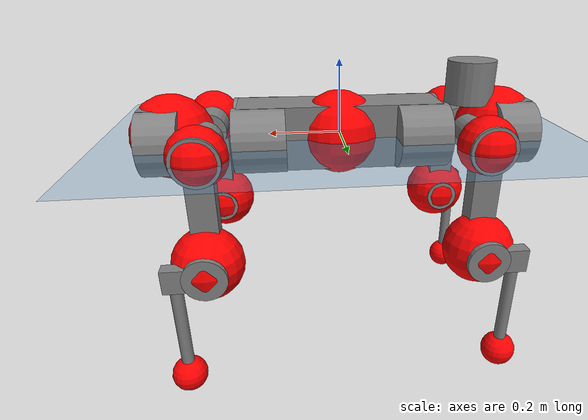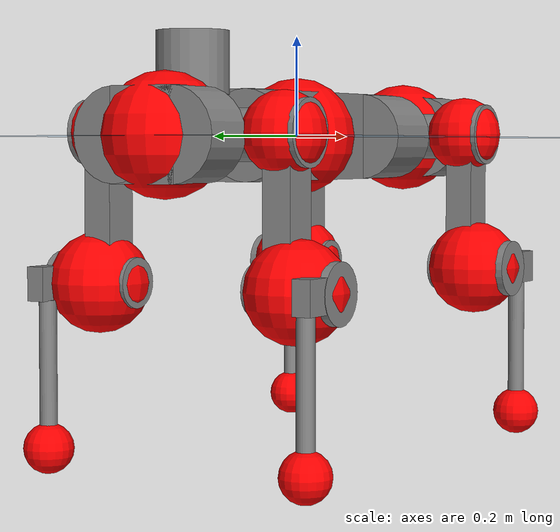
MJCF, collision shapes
<mujoco model="anymal_c">
  <compiler angle="radian" assetdir="assets" balanceinertia="true" inertiafromgeom="false"/>

  <option timestep="0.005" density="1.2" viscosity="2e-05"/>

  <size nkey="1"/>

  <visual>
    <quality shadowsize="8192"/>
    <map shadowclip="0.5"/>
  </visual>

  <default>
    <default class="/">
      <material specular="0" shininess="0.25"/>
      <geom contype="0" conaffinity="0" group="1" solref="-1000 -80"/>
      <site size="0.01 0.005 0.005" group="5"/>
      <general forcelimited="true" forcerange="-80 80" biastype="affine" gainprm="80" biasprm="0 -80 -2"/>
      <default class="anymal_c">
        <joint armature="0.01" damping="0.01" frictionloss="0.1"/>
        <default class="visual">
          <geom type="mesh" group="2"/>
          <default class="visual_zflip"/>
        </default>
        <default class="collision">
          <geom type="cylinder" group="3"/>
          <default class="foot">
            <geom size="0.03 0 0" type="sphere" condim="6" priority="1" friction="0.8 0.02 0.01" solimp="0.015 1 0.03"/>
          </default>
        </default>
      </default>
      <default class="reward_collision_sphere">
        <geom group="5" rgba="1 0 0 1"/>
      </default>
    </default>
  </default>

  <asset>
    <texture type="skybox" colorspace="auto" name="//unnamed_texture_0" builtin="gradient" rgb1="0.95 0.95 0.95" rgb2="0.95 0.95 0.95" width="100" height="600"/>
    <texture type="2d" colorspace="auto" name="texplane" builtin="checker" rgb1="0.345 0.575 0.748" rgb2="0.345 0.575 0.748" markrgb="1 1 1" width="512" height="512"/>
    <texture type="2d" colorspace="linear" name="base" file="base.png"/>
    <texture type="2d" colorspace="linear" name="top_shell" file="top_shell.png"/>
    <texture type="2d" colorspace="linear" name="bottom_shell" file="bottom_shell.png"/>
    <texture type="2d" colorspace="linear" name="remote" file="remote.png"/>
    <texture type="2d" colorspace="linear" name="hatch" file="hatch.png"/>
    <texture type="2d" colorspace="linear" name="handle" file="handle.png"/>
    <texture type="2d" colorspace="linear" name="face" file="face.png"/>
    <texture type="2d" colorspace="linear" name="battery" file="battery.png"/>
    <texture type="2d" colorspace="linear" name="lidar_cage" file="lidar_cage.png"/>
    <texture type="2d" colorspace="linear" name="depth_camera" file="depth_camera.png"/>
    <texture type="2d" colorspace="linear" name="wide_angle_camera" file="wide_angle_camera.png"/>
    <texture type="2d" colorspace="linear" name="lidar" file="lidar.png"/>
    <texture type="2d" colorspace="linear" name="drive" file="drive.png"/>
    <texture type="2d" colorspace="linear" name="hip_l" file="hip_l.png"/>
    <texture type="2d" colorspace="linear" name="shank_l" file="shank_l.png"/>
    <texture type="2d" colorspace="linear" name="foot" file="foot.png"/>
    <texture type="2d" colorspace="linear" name="thigh" file="thigh.png"/>
    <texture type="2d" colorspace="linear" name="shank_r" file="shank_r.png"/>
    <texture type="2d" colorspace="linear" name="hip_r" file="hip_r.png"/>
    <material name="MatPlane" class="/" texture="texplane" texuniform="true" texrepeat="2 2" specular="0.9" shininess="0.5"/>
    <material name="black_plastic" class="/" rgba="0.007 0.007 0.007 1"/>
    <material name="green" class="/" rgba="0.052 0.178 0.033 1"/>
    <material name="red" class="/" rgba="0.178 0.006 0.005 1"/>
    <material name="yellow" class="/" rgba="0.178 0.119 0.006 1"/>
    <material name="lwl" class="/" rgba="0.8 0.8 0.8 1"/>
    <material name="base" class="/" texture="base"/>
    <material name="top_shell" class="/" texture="top_shell"/>
    <material name="bottom_shell" class="/" texture="bottom_shell"/>
    <material name="hip_l" class="/" texture="hip_l"/>
    <material name="thigh" class="/" texture="thigh"/>
    <material name="shank_l" class="/" texture="shank_l"/>
    <material name="foot" class="/" texture="foot"/>
    <material name="hip_r" class="/" texture="hip_r"/>
    <material name="shank" class="/" texture="shank_r"/>
    <material name="hatch" class="/" texture="hatch"/>
    <material name="remote" class="/" texture="remote"/>
    <material name="handle" class="/" texture="handle"/>
    <material name="face" class="/" texture="face"/>
    <material name="depth_camera" class="/" texture="depth_camera"/>
    <material name="wide_angle_camera" class="/" texture="wide_angle_camera"/>
    <material name="battery" class="/" texture="battery"/>
    <material name="lidar_cage" class="/" texture="lidar_cage"/>
    <material name="lidar" class="/" texture="lidar"/>
    <material name="drive" class="/" texture="drive"/>
    <mesh name="base_0" class="/" file="base_0.obj"/>
    <mesh name="base_1" class="/" file="base_1.obj"/>
    <mesh name="base_2" class="/" file="base_2.obj"/>
    <mesh name="base_3" class="/" file="base_3.obj"/>
    <mesh name="base_4" class="/" file="base_4.obj"/>
    <mesh name="base_5" class="/" file="base_5.obj"/>
    <mesh name="top_shell" class="/" file="top_shell.obj"/>
    <mesh name="bottom_shell" class="/" file="bottom_shell.obj"/>
    <mesh name="remote" class="/" file="remote.obj"/>
    <mesh name="handle" class="/" file="handle.obj"/>
    <mesh name="face" class="/" file="face.obj"/>
    <mesh name="wide_angle_camera" class="/" file="wide_angle_camera.obj"/>
    <mesh name="depth_camera" class="/" file="depth_camera.obj"/>
    <mesh name="battery" class="/" file="battery.obj"/>
    <mesh name="lidar_cage" class="/" file="lidar_cage.obj"/>
    <mesh name="lidar" class="/" file="lidar.obj"/>
    <mesh name="drive" class="/" file="drive.obj"/>
    <mesh name="hip_l" class="/" file="hip_l.obj"/>
    <mesh name="thigh" class="/" file="thigh.obj"/>
    <mesh name="shank_l" class="/" file="shank_l.obj"/>
    <mesh name="foot" class="/" file="foot.obj"/>
    <mesh name="hip_r" class="/" file="hip_r.obj"/>
    <mesh name="hatch" class="/" file="hatch.obj"/>
    <mesh name="shank_r" class="/" file="shank_r.obj"/>
  </asset>

  <worldbody>
    <geom name="floor" class="/" size="100 100 0.125" type="plane" group="0" material="MatPlane"/>
    <light name="toplight_shadow" class="/" pos="0 0 5" dir="0.0990148 0.0990148 -0.990148" type="directional" ambient="0.04 0.04 0.04" diffuse="0.55 0.55 0.55" specular="0.12 0.12 0.12"/>
    <light name="toplight_fill" class="/" pos="0 0 5" dir="0.0990148 0.0990148 -0.990148" type="directional" castshadow="false" ambient="0.04 0.04 0.04" diffuse="0.3 0.3 0.3" specular="0.08 0.08 0.08"/>
    <body name="trunk" childclass="anymal_c" pos="0.000736498 -0.00074194 7.9869e-05" quat="1 -6.69548e-05 -2.93298e-05 6.43903e-05">
      <inertial pos="0.00243274 -0.000663198 0.0491073" quat="0.500173 0.497127 0.498888 0.503788" mass="17.3001" diaginertia="0.741602 0.347606 0.215563"/>
      <joint name="//unnamed_joint_0" type="free" armature="0" damping="0" frictionloss="0"/>
      <geom name="//unnamed_geom_1" class="visual" material="green" mesh="base_0"/>
      <geom name="//unnamed_geom_2" class="visual" material="yellow" mesh="base_1"/>
      <geom name="//unnamed_geom_3" class="visual" material="red" mesh="base_2"/>
      <geom name="//unnamed_geom_4" class="visual" material="black_plastic" mesh="base_3"/>
      <geom name="//unnamed_geom_5" class="visual" material="lwl" mesh="base_4"/>
      <geom name="//unnamed_geom_6" class="visual" material="base" mesh="base_5"/>
      <geom name="trunk_1" class="collision" size="0.28207 0.0680858 0.0875388" type="box"/>
      <geom name="trunk_2" class="collision" size="0.0875388 0.0705174" pos="0.223642 0.0623862 0" quat="0.707107 0 0.707107 0"/>
      <geom name="trunk_3" class="collision" size="0.0875388 0.0705174" pos="-0.223642 0.0623862 0" quat="0.707107 0 0.707107 0"/>
      <geom name="trunk_4" class="collision" size="0.0875388 0.0705174" pos="0.223642 -0.0623862 0" quat="0.707107 0 0.707107 0"/>
      <geom name="trunk_5" class="collision" size="0.0875388 0.0705174" pos="-0.223642 -0.0623862 0" quat="0.707107 0 0.707107 0"/>
      <geom name="//unnamed_geom_12" class="visual" material="top_shell" mesh="top_shell"/>
      <geom name="//unnamed_geom_13" class="visual" material="bottom_shell" mesh="bottom_shell"/>
      <geom name="//unnamed_geom_14" class="visual" material="remote" mesh="remote"/>
      <geom name="//unnamed_geom_15" class="visual" material="handle" mesh="handle"/>
      <geom name="//unnamed_geom_16" class="visual" pos="0.426206 0 0" quat="1 0 0 0" material="face" mesh="face"/>
      <geom name="trunk_6" class="collision" size="0.053496 0.0680858 0.0875388" pos="0.482759 0 0" type="box"/>
      <geom name="//unnamed_geom_18" class="collision" size="0.0875388 0.053496" pos="0.482759 0.0623862 0" quat="0.707107 0 0.707107 0"/>
      <geom name="//unnamed_geom_19" class="collision" size="0.0875388 0.053496" pos="0.482759 -0.0623862 0" quat="0.707107 0 0.707107 0"/>
      <geom name="//unnamed_geom_20" class="visual" pos="0.474686 0 -0.0289298" quat="0.965926 0 0.258819 0" material="depth_camera" mesh="depth_camera"/>
      <geom name="//unnamed_geom_21" class="visual" pos="0.527487 0 0.0149474" material="wide_angle_camera" mesh="wide_angle_camera"/>
      <geom name="//unnamed_geom_22" class="visual_zflip" pos="-0.426206 0 0" quat="0 0 0 1" material="face" mesh="face"/>
      <geom name="trunk_7" class="collision" size="0.053496 0.0680858 0.0875388" pos="-0.482759 0 0" quat="0 0 0 1" type="box"/>
      <geom name="//unnamed_geom_24" class="collision" size="0.0875388 0.053496" pos="-0.482759 -0.0623862 0" quat="0 -0.707107 0 0.707107"/>
      <geom name="//unnamed_geom_25" class="collision" size="0.0875388 0.053496" pos="-0.482759 0.0623862 0" quat="0 -0.707107 0 0.707107"/>
      <geom name="//unnamed_geom_26" class="visual" pos="-0.474686 0 -0.0289298" quat="0 -0.258819 0 0.965926" material="depth_camera" mesh="depth_camera"/>
      <geom name="//unnamed_geom_27" class="visual_zflip" pos="-0.527487 0 0.0149474" quat="0 0 0 1" material="wide_angle_camera" mesh="wide_angle_camera"/>
      <geom name="//unnamed_geom_28" class="visual" material="battery" mesh="battery"/>
      <geom name="//unnamed_geom_29" class="visual" pos="0 0.0663444 0.0292322" quat="0.683013 -0.183013 0.183013 0.683013" material="depth_camera" mesh="depth_camera"/>
      <geom name="//unnamed_geom_30" class="visual" pos="0 -0.0663444 0.0292322" quat="0.683013 0.183013 0.183013 -0.683013" material="depth_camera" mesh="depth_camera"/>
      <geom name="//unnamed_geom_31" class="visual" pos="-0.37428 0 0.073389" quat="1 0 0 0" material="lidar_cage" mesh="lidar_cage"/>
      <geom name="trunk_8" class="collision" size="0.0680858 0.0583592" pos="-0.37428 0 0.133298"/>
      <geom name="//unnamed_geom_33" class="visual" pos="-0.37428 -5.38274e-05 0.141985" quat="0.707107 0 0 -0.707107" material="lidar" mesh="lidar"/>
      <geom name="//unnamed_geom_34" class="visual" pos="0.308369 0.0927261 -1.85023e-09" quat="0.258819 0.965926 0 0" material="drive" mesh="drive"/>
      <geom name="//unnamed_geom_35" class="visual" pos="0.308369 -0.0927261 1.85023e-09" quat="0.258819 -0.965926 0 0" material="drive" mesh="drive"/>
      <geom name="//unnamed_geom_36" class="visual" pos="-0.308369 0.0927261 1.85023e-09" quat="0 0 0.965926 -0.258819" material="drive" mesh="drive"/>
      <geom name="//unnamed_geom_37" class="visual" pos="-0.308369 -0.0927261 -1.85023e-09" quat="0 0 -0.965926 -0.258819" material="drive" mesh="drive"/>
      <geom name="//unnamed_geom_38" class="visual" pos="0.119276 0 0.0728898" quat="1 0 0 0" material="hatch" mesh="hatch"/>
      <geom name="//unnamed_geom_39" class="reward_collision_sphere" size="0.116718"/>
      <geom name="//unnamed_geom_40" class="reward_collision_sphere" size="0.116718" pos="0.462708 0 0"/>
      <geom name="//unnamed_geom_41" class="reward_collision_sphere" size="0.116718" pos="-0.462708 0 0"/>
      <site name="imu" pos="0.255671 0.00502316 0.0394829" size="0.00972654"/>
      <camera name="track" pos="0 -1.78246 0" quat="0.707107 0.707107 0 0" mode="trackcom"/>
      <camera name="ego_camera" pos="0.462708 0 -0.0399396" quat="-0.5 -0.5 0.5 0.5"/>
      <body name="LF_HIP" pos="0.309441 0.0930145 0.00148707" quat="0.258976 0.965884 -3.29493e-05 -0.000114315">
        <inertial pos="0.0572275 -0.012626 -0.00833496" quat="-0.128203 0.710199 -0.135551 0.678828" mass="2.55797" diaginertia="0.0067257 0.00278969 0.00326254"/>
        <joint name="LF_HAA" pos="0 0 0" axis="0.999933 -0.000632195 -0.0115584" range="-0.719839 0.488145" armature="0.0090946" damping="0.0126499" frictionloss="0.0925163"/>
        <geom name="//unnamed_geom_42" class="visual" pos="0 -0.000108841 1.7877e-05" quat="0.258819 -0.965926 0 0" material="hip_l" mesh="hip_l"/>
        <geom name="//unnamed_geom_43" class="visual" pos="0.0615916 -0.0728655 -0.0428623" quat="0.183013 -0.683013 0.683013 0.183013" material="drive" mesh="drive"/>
        <geom name="//unnamed_geom_44" class="collision" size="0.0486327 0.0680858" pos="0.0615916 -0.0106589 -0.00689457" quat="-0.353553 -0.612372 0.612372 -0.353553"/>
        <body name="LF_THIGH" pos="0.062871 -0.0657874 -0.041603" quat="0.182808 -0.683072 0.682909 0.183385">
          <inertial pos="0.0321707 0.000149985 -0.246777" quat="0.993541 -0.00173352 -0.0777389 0.082641" mass="2.83231" diaginertia="0.0348711 0.0169229 0.00419194"/>
          <joint name="LF_HFE" pos="0 0 0" axis="0.999986 0.00179715 0.00500059" range="-3.15759 3.13799" armature="0.00986485" damping="0.0140193" frictionloss="0.10172"/>
          <geom name="//unnamed_geom_45" class="visual" pos="0.00272595 4.29547e-06 0" quat="0.707107 0 0 -0.707107" material="thigh" mesh="thigh"/>
          <geom name="//unnamed_geom_46" class="collision" size="0.0632225 0.0389062" pos="0.0411296 0 0" quat="0.5 0.5 -0.5 -0.5"/>
          <geom name="//unnamed_geom_47" class="collision" size="0.0364745 0.0291796 0.13745" pos="0.0308472 0 -0.141101" quat="0.707107 0 0 -0.707107" type="box"/>
          <geom name="//unnamed_geom_48" class="visual" pos="0.103133 0 -0.28457" quat="1 0 0 0" material="drive" mesh="drive"/>
          <geom name="//unnamed_geom_49" class="collision" size="0.0486327 0.0680858" pos="0.0311557 0 -0.28457" quat="0.707107 0 0.707107 0"/>
          <geom name="//unnamed_geom_50" class="reward_collision_sphere" size="0.0778123" pos="0.025706 0 0"/>
          <body name="LF_SHANK" pos="0.103399 -0.00201384 -0.285183" quat="1 0.000140675 -1.63853e-05 -0.000200346">
            <inertial pos="0.00462712 -0.0548759 -0.080441" quat="0.993538 -0.111184 -5.39005e-05 -0.0228295" mass="0.5302" diaginertia="0.0115835 0.00514807 0.00109429"/>
            <joint name="LF_KFE" pos="0 0 0" axis="0.999999 -0.000367255 0.00168691" range="-3.13618 3.1287" armature="0.00985051" damping="0.00837507" frictionloss="0.0981189"/>
            <geom name="//unnamed_geom_51" class="visual" pos="0.000888874 0.00473952 0" quat="0.707107 0 0 -0.707107" material="shank_l" mesh="shank_l"/>
            <geom name="LF_kfe_act" class="collision" size="0.0583592 0.0194531" pos="0.0205648 0 0" quat="0.5 0.5 -0.5 -0.5"/>
            <geom name="//unnamed_geom_53" class="collision" size="0.0559266 0.0328271 0.0184804" pos="0.0205648 -0.0512449 0" quat="0.5 0.5 -0.5 -0.5" type="box"/>
            <geom name="//unnamed_geom_54" class="visual" pos="0.0134183 -0.0768564 -0.33746" quat="0.382683 0 0 -0.92388" material="foot" mesh="foot"/>
            <geom name="LF_calf" class="collision" size="0.0170214 0.137389" pos="0.0134185 -0.0783838 -0.16873" quat="0.707107 0 0 -0.707107"/>
            <geom name="LF_foot" class="foot" size="0.0295307" pos="0.0134185 -0.0783838 -0.314994" quat="0.707107 0 0 -0.707107"/>
            <geom name="//unnamed_geom_57" class="reward_collision_sphere" size="0.0972654" pos="-0.051412 0 0"/>
            <geom name="//unnamed_geom_58" class="reward_collision_sphere" size="0.0486327" pos="0.0134185 -0.0783838 -0.314994"/>
            <site name="LF_foot" class="foot" pos="0.0134185 -0.0783838 -0.314994" quat="0.707107 0 0 -0.707107" size="0.00972654"/>
          </body>
        </body>
      </body>
      <body name="RF_HIP" pos="0.307512 -0.0917261 0.000279766" quat="0.258552 -0.965997 0.000198567 3.18846e-05">
        <inertial pos="0.0598463 0.0136592 -0.0093615" quat="0.135371 0.676187 0.127569 0.712862" mass="2.61448" diaginertia="0.00685696 0.0028321 0.00331894"/>
        <joint name="RF_HAA" pos="0 0 0" axis="0.999985 -0.00529123 0.00130737" range="-0.515107 0.730867" armature="0.00977304" damping="0.0127026" frictionloss="0.0957005"/>
        <geom name="//unnamed_geom_59" class="visual" pos="0 0.00010884 1.78769e-05" quat="0.258819 0.965926 0 0" material="hip_r" mesh="hip_r"/>
        <geom name="//unnamed_geom_60" class="visual" pos="0.0615916 0.0728655 -0.0428623" quat="0.183013 0.683013 0.683013 -0.183013" material="drive" mesh="drive"/>
        <geom name="//unnamed_geom_61" class="collision" size="0.0486327 0.0680858" pos="0.0615916 0.0106589 -0.00689457" quat="-0.353553 0.612372 0.612372 0.353553"/>
        <body name="RF_THIGH" pos="0.0618132 0.0654508 -0.0429534" quat="0.183041 0.682961 0.683102 -0.182843">
          <inertial pos="0.0327574 0.00170576 -0.245019" quat="0.992805 -0.00523092 -0.080555 0.0884443" mass="2.80942" diaginertia="0.0345008 0.0168298 0.00413032"/>
          <joint name="RF_HFE" pos="0 0 0" axis="0.999989 0.00389301 -0.00274923" stiffness="0.00546233" range="-3.15111 3.11942" armature="0.00978258" damping="0.00678643" frictionloss="0.0995733"/>
          <geom name="//unnamed_geom_62" class="visual" pos="0.00272595 4.29547e-06 0" quat="0.707107 0 0 -0.707107" material="thigh" mesh="thigh"/>
          <geom name="//unnamed_geom_63" class="collision" size="0.0632225 0.0389062" pos="0.0411296 0 0" quat="0.5 0.5 0.5 0.5"/>
          <geom name="//unnamed_geom_64" class="collision" size="0.0364745 0.0291796 0.13745" pos="0.0308472 0 -0.141101" quat="0.707107 0 0 0.707107" type="box"/>
          <geom name="//unnamed_geom_65" class="visual" pos="0.103133 0 -0.28457" quat="1 0 0 0" material="drive" mesh="drive"/>
          <geom name="//unnamed_geom_66" class="collision" size="0.0486327 0.0680858" pos="0.0311557 0 -0.28457" quat="0.707107 0 0.707107 0"/>
          <geom name="//unnamed_geom_67" class="reward_collision_sphere" size="0.0778123" pos="0.025706 0 0"/>
          <body name="RF_SHANK" pos="0.102335 -0.000261262 -0.284092" quat="1 -0.000431707 -0.000575911 0.000304582">
            <inertial pos="0.00770365 0.0553076 -0.0799455" quat="0.993002 0.115848 -0.000845657 0.0229214" mass="0.535637" diaginertia="0.0114645 0.00519172 0.00112406"/>
            <joint name="RF_KFE" pos="0 0 0" axis="0.999998 0.00077632 -0.00176596" range="-3.1553 3.13921" armature="0.00998556" damping="0.0129257" frictionloss="0.100351"/>
            <geom name="//unnamed_geom_68" class="visual" pos="0.000888869 -0.00473951 0" quat="0.707107 0 0 0.707107" material="shank" mesh="shank_r"/>
            <geom name="RF_kfe_act" class="collision" size="0.0583592 0.0194531" pos="0.0205648 0 0" quat="0.5 0.5 0.5 0.5"/>
            <geom name="//unnamed_geom_70" class="collision" size="0.0559266 0.0328271 0.0184804" pos="0.0205648 0.0512449 0" quat="0.5 0.5 0.5 0.5" type="box"/>
            <geom name="//unnamed_geom_71" class="visual" pos="0.0134188 0.0768564 -0.33746" quat="0.382683 0 0 0.92388" material="foot" mesh="foot"/>
            <geom name="RF_calf" class="collision" size="0.0170214 0.137389" pos="0.0134185 0.0783838 -0.16873" quat="0.707107 0 0 0.707107"/>
            <geom name="RF_foot" class="foot" size="0.0292935" pos="0.0134185 0.0783838 -0.314994" quat="0.707107 0 0 0.707107"/>
            <geom name="//unnamed_geom_74" class="reward_collision_sphere" size="0.0972654" pos="-0.051412 0 0"/>
            <geom name="//unnamed_geom_75" class="reward_collision_sphere" size="0.0486327" pos="0.0134185 0.0783838 -0.314994"/>
            <site name="RF_foot" class="foot" pos="0.0134185 0.0783838 -0.314994" quat="0.707107 0 0 0.707107" size="0.00972654"/>
          </body>
        </body>
      </body>
      <body name="LH_HIP" pos="-0.305845 0.0926254 0.000657567" quat="2.04353e-06 4.20014e-06 0.965927 -0.258817">
        <inertial pos="0.0596279 0.0116101 -0.00825361" quat="0.137332 0.679353 0.129499 0.709119" mass="2.58493" diaginertia="0.00672015 0.00275917 0.00324116"/>
        <joint name="LH_HAA" pos="0 0 0" axis="0.999994 0.000464376 -0.00351039" range="-0.505317 0.70645" armature="0.00967645" damping="0.00943708" frictionloss="0.0997951"/>
        <geom name="//unnamed_geom_76" class="visual" pos="0 0.00010884 1.78769e-05" quat="-0.258819 -0.965926 0 0" material="hip_r" mesh="hip_r"/>
        <geom name="//unnamed_geom_77" class="visual" pos="0.0615916 0.0728655 -0.0428623" quat="0.183013 0.683013 0.683013 -0.183013" material="drive" mesh="drive"/>
        <geom name="//unnamed_geom_78" class="collision" size="0.0486327 0.0680858" pos="0.0615916 0.0106589 -0.00689457" quat="-0.353553 0.612372 0.612372 0.353553"/>
        <body name="LH_THIGH" pos="0.0601328 0.0639482 -0.0428495" quat="0.183179 0.682953 0.682973 -0.183217">
          <inertial pos="0.0321475 0.00119939 -0.245294" quat="0.992813 -0.00532374 -0.0805843 0.0883155" mass="2.82532" diaginertia="0.0348524 0.0166863 0.00404812"/>
          <joint name="LH_HFE" pos="0 0 0" axis="0.999997 0.0018495 -0.00138364" range="-3.15257 3.12489" armature="0.0102322" damping="0.00621274" frictionloss="0.0990515"/>
          <geom name="//unnamed_geom_79" class="visual" pos="0.00272595 4.29547e-06 0" quat="0.707107 0 0 -0.707107" material="thigh" mesh="thigh"/>
          <geom name="//unnamed_geom_80" class="collision" size="0.0632225 0.0389062" pos="0.0411296 0 0" quat="0.5 0.5 -0.5 -0.5"/>
          <geom name="//unnamed_geom_81" class="collision" size="0.0364745 0.0291796 0.13745" pos="0.0308472 0 -0.141101" quat="0.707107 0 0 -0.707107" type="box"/>
          <geom name="//unnamed_geom_82" class="visual" pos="0.103133 0 -0.28457" quat="1 0 0 0" material="drive" mesh="drive"/>
          <geom name="//unnamed_geom_83" class="collision" size="0.0486327 0.0680858" pos="0.0311557 0 -0.28457" quat="0.707107 0 0.707107 0"/>
          <geom name="//unnamed_geom_84" class="reward_collision_sphere" size="0.0778123" pos="0.025706 0 0"/>
          <body name="LH_SHANK" pos="0.104062 -0.000586499 -0.286533" quat="1 0.000655381 0.000548644 0.000450639">
            <inertial pos="0.00587541 0.0546122 -0.078648" quat="0.992403 0.120378 0.00050167 0.0254004" mass="0.536659" diaginertia="0.0117469 0.00526887 0.00111033"/>
            <joint name="LH_KFE" pos="0 0 0" axis="0.999978 0.00199263 0.00632152" range="-3.13659 3.15471" armature="0.00986778" damping="0.00939552" frictionloss="0.0974185"/>
            <geom name="//unnamed_geom_85" class="visual" pos="0.000888869 -0.00473951 0" quat="-0.707107 0 0 -0.707107" material="shank" mesh="shank_r"/>
            <geom name="LH_kfe_act" class="collision" size="0.0583592 0.0194531" pos="0.0205648 0 0" quat="0.5 0.5 -0.5 -0.5"/>
            <geom name="//unnamed_geom_87" class="collision" size="0.0559266 0.0328271 0.0184804" pos="0.0205648 0.0512449 0" quat="0.5 0.5 -0.5 -0.5" type="box"/>
            <geom name="//unnamed_geom_88" class="visual" pos="0.0134188 0.0768564 -0.33746" quat="-0.382683 0 0 -0.92388" material="foot" mesh="foot"/>
            <geom name="LH_calf" class="collision" size="0.0170214 0.137389" pos="0.0134185 0.0783838 -0.16873" quat="0.707107 0 0 -0.707107"/>
            <geom name="LH_foot" class="foot" size="0.0305563" pos="0.0134185 0.0783838 -0.314994" quat="0.707107 0 0 -0.707107"/>
            <geom name="//unnamed_geom_91" class="reward_collision_sphere" size="0.0972654" pos="-0.051412 0 0"/>
            <geom name="//unnamed_geom_92" class="reward_collision_sphere" size="0.0486327" pos="0.0134185 0.0783838 -0.314994"/>
            <site name="LH_foot" class="foot" pos="0.0134185 0.0783838 -0.314994" quat="0.707107 0 0 -0.707107" size="0.00972654"/>
          </body>
        </body>
      </body>
      <body name="RH_HIP" pos="-0.309623 -0.0933889 -2.68122e-05" quat="0.00035236 0.000156477 -0.965893 -0.258942">
        <inertial pos="0.05795 -0.0146882 -0.0085609" quat="-0.122429 0.711782 -0.132874 0.678765" mass="2.54061" diaginertia="0.00661457 0.00272534 0.00321406"/>
        <joint name="RH_HAA" pos="0 0 0" axis="0.999962 0.00296966 0.00817227" range="-0.723851 0.481777" armature="0.00989423" damping="0.00573966" frictionloss="0.0966041"/>
        <geom name="//unnamed_geom_93" class="visual" pos="0 -0.000108841 1.7877e-05" quat="-0.258819 0.965926 0 0" material="hip_l" mesh="hip_l"/>
        <geom name="//unnamed_geom_94" class="visual" pos="0.0615916 -0.0728655 -0.0428623" quat="-0.183013 0.683013 -0.683013 -0.183013" material="drive" mesh="drive"/>
        <geom name="//unnamed_geom_95" class="collision" size="0.0486327 0.0680858" pos="0.0615916 -0.0106589 -0.00689457" quat="0.353553 0.612372 -0.612372 0.353553"/>
        <body name="RH_THIGH" pos="0.0620271 -0.0641595 -0.0413226" quat="-0.18297 0.682885 -0.683181 -0.182902">
          <inertial pos="0.0318339 -0.000118078 -0.24551" quat="0.993923 -0.00445099 -0.0795815 0.0759275" mass="2.82469" diaginertia="0.0349711 0.0168953 0.00424996"/>
          <joint name="RH_HFE" pos="0 0 0" axis="0.999996 -0.00248929 -0.00129215" range="-3.13969 3.12865" armature="0.00987411" damping="0.00280235" frictionloss="0.10205"/>
          <geom name="//unnamed_geom_96" class="visual" pos="0.00272595 4.29547e-06 0" quat="0.707107 0 0 -0.707107" material="thigh" mesh="thigh"/>
          <geom name="//unnamed_geom_97" class="collision" size="0.0632225 0.0389062" pos="0.0411296 0 0" quat="0.5 0.5 0.5 0.5"/>
          <geom name="//unnamed_geom_98" class="collision" size="0.0364745 0.0291796 0.13745" pos="0.0308472 0 -0.141101" quat="0.707107 0 0 0.707107" type="box"/>
          <geom name="//unnamed_geom_99" class="visual" pos="0.103133 0 -0.28457" quat="1 0 0 0" material="drive" mesh="drive"/>
          <geom name="//unnamed_geom_100" class="collision" size="0.0486327 0.0680858" pos="0.0311557 0 -0.28457" quat="0.707107 0 0.707107 0"/>
          <geom name="//unnamed_geom_101" class="reward_collision_sphere" size="0.0778123" pos="0.025706 0 0"/>
          <body name="RH_SHANK" pos="0.102867 0.000345891 -0.284757" quat="1 -2.1882e-05 6.49903e-05 -0.000107727">
            <inertial pos="0.00506905 -0.0559258 -0.0794375" quat="0.992993 -0.11528 -0.000478863 -0.025996" mass="0.542531" diaginertia="0.0117407 0.00521398 0.00110583"/>
            <joint name="RH_KFE" pos="0 0 0" axis="0.999991 0.00430501 3.2647e-05" stiffness="0.000983028" range="-3.12523 3.15814" armature="0.00977563" damping="0.00962734" frictionloss="0.103492"/>
            <geom name="//unnamed_geom_102" class="visual" pos="0.000888874 0.00473952 0" quat="0.707107 0 0 -0.707107" material="shank_l" mesh="shank_l"/>
            <geom name="RH_kfe_act" class="collision" size="0.0583592 0.0194531" pos="0.0205648 0 0" quat="0.5 0.5 0.5 0.5"/>
            <geom name="//unnamed_geom_104" class="collision" size="0.0559266 0.0328271 0.0184804" pos="0.0205648 -0.0512449 0" quat="0.5 0.5 0.5 0.5" type="box"/>
            <geom name="//unnamed_geom_105" class="visual" pos="0.0134183 -0.0768564 -0.33746" quat="0.382683 0 0 -0.92388" material="foot" mesh="foot"/>
            <geom name="RH_calf" class="collision" size="0.0170214 0.137389" pos="0.0134185 -0.0783838 -0.16873" quat="0.707107 0 0 0.707107"/>
            <geom name="RH_foot" class="foot" size="0.0277136" pos="0.0134185 -0.0783838 -0.314994" quat="0.707107 0 0 0.707107"/>
            <geom name="//unnamed_geom_108" class="reward_collision_sphere" size="0.0972654" pos="-0.051412 0 0"/>
            <geom name="//unnamed_geom_109" class="reward_collision_sphere" size="0.0486327" pos="0.0134185 -0.0783838 -0.314994"/>
            <site name="RH_foot" class="foot" pos="0.0134185 -0.0783838 -0.314994" quat="0.707107 0 0 0.707107" size="0.00972654"/>
          </body>
        </body>
      </body>
    </body>
  </worldbody>

  <contact>
    <pair class="/" geom1="floor" geom2="LF_foot" name="//unnamed_contact_0"/>
    <pair class="/" geom1="floor" geom2="RF_foot" name="//unnamed_contact_1"/>
    <pair class="/" geom1="floor" geom2="LH_foot" name="//unnamed_contact_2"/>
    <pair class="/" geom1="floor" geom2="RH_foot" name="//unnamed_contact_3"/>
  </contact>

  <actuator>
    <general name="LF_HAA" class="/" joint="LF_HAA" forcerange="-78.6661 78.6661" gainprm="79.0285" biasprm="0 -79.0285 -1.87523"/>
    <general name="LF_HFE" class="/" joint="LF_HFE" forcerange="-77.0788 77.0788" gainprm="79.0285" biasprm="0 -79.0285 -1.87523"/>
    <general name="LF_KFE" class="/" joint="LF_KFE" forcerange="-75.2504 75.2504" gainprm="79.0285" biasprm="0 -79.0285 -1.87523"/>
    <general name="RF_HAA" class="/" joint="RF_HAA" forcerange="-78.7488 78.7488" gainprm="79.0285" biasprm="0 -79.0285 -1.87523"/>
    <general name="RF_HFE" class="/" joint="RF_HFE" forcerange="-80.8 80.8" gainprm="79.0285" biasprm="0 -79.0285 -1.87523"/>
    <general name="RF_KFE" class="/" joint="RF_KFE" forcerange="-75.6355 75.6355" gainprm="79.0285" biasprm="0 -79.0285 -1.87523"/>
    <general name="LH_HAA" class="/" joint="LH_HAA" forcerange="-77.989 77.989" gainprm="79.0285" biasprm="0 -79.0285 -1.87523"/>
    <general name="LH_HFE" class="/" joint="LH_HFE" forcerange="-76.2104 76.2104" gainprm="79.0285" biasprm="0 -79.0285 -1.87523"/>
    <general name="LH_KFE" class="/" joint="LH_KFE" forcerange="-81.3856 81.3856" gainprm="79.0285" biasprm="0 -79.0285 -1.87523"/>
    <general name="RH_HAA" class="/" joint="RH_HAA" forcerange="-78.9445 78.9445" gainprm="79.0285" biasprm="0 -79.0285 -1.87523"/>
    <general name="RH_HFE" class="/" joint="RH_HFE" forcerange="-76.4353 76.4353" gainprm="79.0285" biasprm="0 -79.0285 -1.87523"/>
    <general name="RH_KFE" class="/" joint="RH_KFE" forcerange="-73.3461 73.3461" gainprm="79.0285" biasprm="0 -79.0285 -1.87523"/>
  </actuator>

  <sensor>
    <gyro site="imu" name="imu_angular_velocity"/>
    <velocimeter site="imu" name="imu_linear_velocity"/>
    <framelinvel objtype="site" objname="LF_foot" name="LF_foot_global_linear_velocity"/>
    <framelinvel objtype="site" objname="RF_foot" name="RF_foot_global_linear_velocity"/>
    <framelinvel objtype="site" objname="LH_foot" name="LH_foot_global_linear_velocity"/>
    <framelinvel objtype="site" objname="RH_foot" name="RH_foot_global_linear_velocity"/>
  </sensor>

  <keyframe>
    <key name="home" qpos="0 0 0.55 1 0 0 0 0 0.4 -0.8 0 -0.4 0.8 0 -0.4 0.8 0 0.4 -0.8"/>
  </keyframe>
</mujoco>
